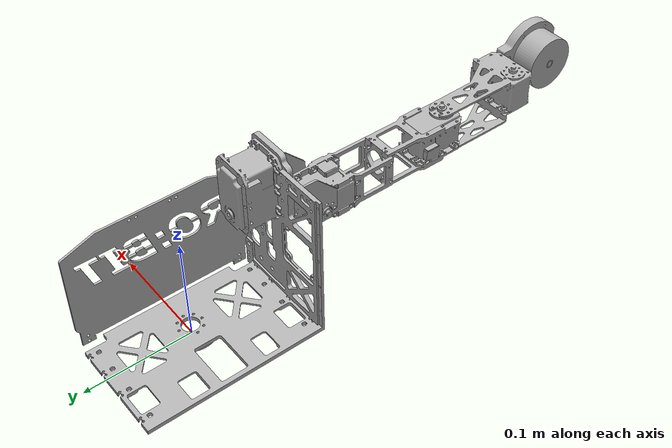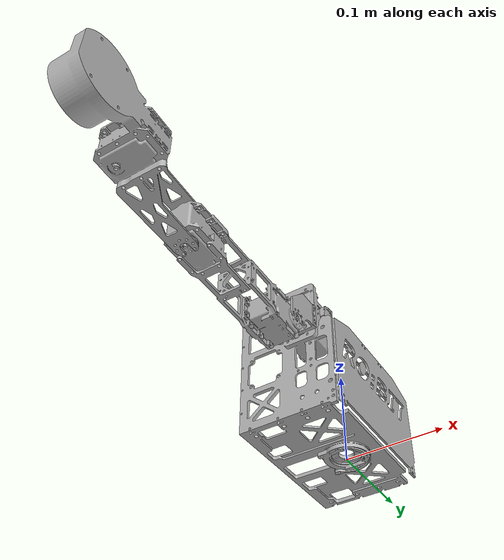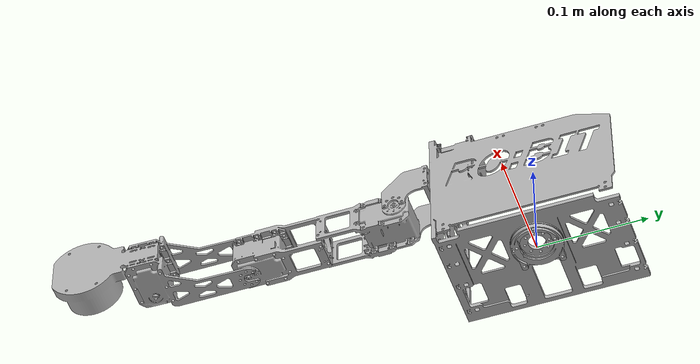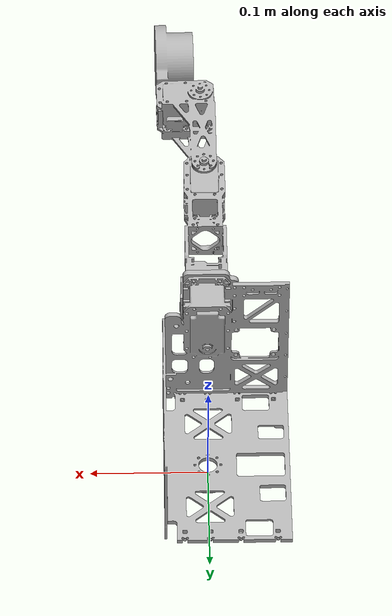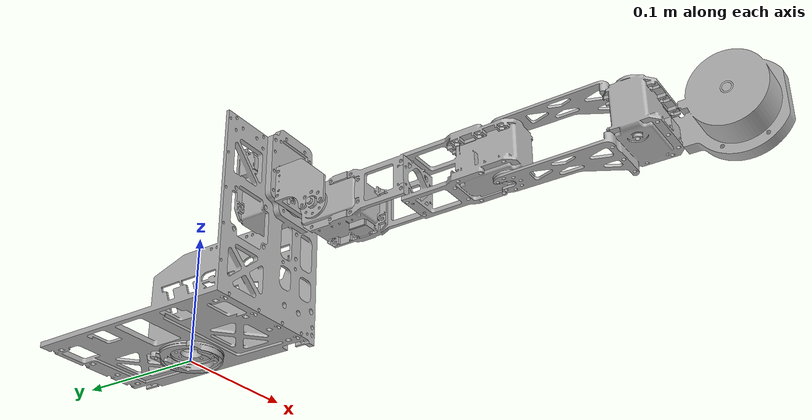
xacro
<?xml version="1.0" ?>
<robot name="torso" xmlns:xacro="http://www.ros.org/wiki/xacro">

<xacro:include filename="$(find torso_description)/urdf/materials.xacro" />
<xacro:include filename="$(find torso_description)/urdf/torso.trans" />
<xacro:include filename="$(find torso_description)/urdf/torso.gazebo" />
<link name="base_link">
  <inertial>
    <origin xyz="0.00011617065581982777 0.0001987147886676531 0.003861680026704299" rpy="0 0 0"/>
    <mass value="0.03383387831439715"/>
    <inertia ixx="7e-06" iyy="7e-06" izz="1.4e-05" ixy="-0.0" iyz="0.0" ixz="0.0"/>
  </inertial>
  <visual>
    <origin xyz="0 0 0" rpy="0 0 0"/>
    <geometry>
      <mesh filename="file://$(find torso_description)/meshes/base_link.stl" scale="0.001 0.001 0.001"/>
    </geometry>
    <material name="silver"/>
  </visual>
  <collision>
    <origin xyz="0 0 0" rpy="0 0 0"/>
    <geometry>
      <mesh filename="file://$(find torso_description)/meshes/base_link.stl" scale="0.001 0.001 0.001"/>
    </geometry>
  </collision>
</link>

<link name="torso_1">
  <inertial>
    <origin xyz="-0.0003615717861448489 -0.04352493787760899 0.07173680905089597" rpy="0 0 0"/>
    <mass value="1.3481459270185834"/>
    <inertia ixx="0.006536" iyy="0.004526" izz="0.004074" ixy="-0.000353" iyz="0.001724" ixz="-0.000148"/>
  </inertial>
  <visual>
    <origin xyz="2.8e-05 -0.000199 -0.006342" rpy="0 0 0"/>
    <geometry>
      <mesh filename="file://$(find torso_description)/meshes/torso_1.stl" scale="0.001 0.001 0.001"/>
    </geometry>
    <material name="silver"/>
  </visual>
  <collision>
    <origin xyz="2.8e-05 -0.000199 -0.006342" rpy="0 0 0"/>
    <geometry>
      <mesh filename="file://$(find torso_description)/meshes/torso_1.stl" scale="0.001 0.001 0.001"/>
    </geometry>
  </collision>
</link>

<link name="shoulder_1">
  <inertial>
    <origin xyz="-0.0008026285020619964 -0.012632938511404956 -0.0025992966371718162" rpy="0 0 0"/>
    <mass value="0.06721028329114163"/>
    <inertia ixx="1.7e-05" iyy="2.8e-05" izz="3.3e-05" ixy="-0.0" iyz="-3e-06" ixz="-0.0"/>
  </inertial>
  <visual>
    <origin xyz="2.8e-05 0.091051 -0.106502" rpy="0 0 0"/>
    <geometry>
      <mesh filename="file://$(find torso_description)/meshes/shoulder_1.stl" scale="0.001 0.001 0.001"/>
    </geometry>
    <material name="silver"/>
  </visual>
  <collision>
    <origin xyz="2.8e-05 0.091051 -0.106502" rpy="0 0 0"/>
    <geometry>
      <mesh filename="file://$(find torso_description)/meshes/shoulder_1.stl" scale="0.001 0.001 0.001"/>
    </geometry>
  </collision>
</link>

<link name="upperarm_1">
  <inertial>
    <origin xyz="0.02053221240763796 -0.07168979199152323 -1.5541428002002755e-05" rpy="0 0 0"/>
    <mass value="0.7964005518324803"/>
    <inertia ixx="0.002858" iyy="0.000163" izz="0.002858" ixy="2e-06" iyz="1e-06" ixz="0.0"/>
  </inertial>
  <visual>
    <origin xyz="0.021501 0.123551 -0.081505" rpy="0 0 0"/>
    <geometry>
      <mesh filename="file://$(find torso_description)/meshes/upperarm_1.stl" scale="0.001 0.001 0.001"/>
    </geometry>
    <material name="silver"/>
  </visual>
  <collision>
    <origin xyz="0.021501 0.123551 -0.081505" rpy="0 0 0"/>
    <geometry>
      <mesh filename="file://$(find torso_description)/meshes/upperarm_1.stl" scale="0.001 0.001 0.001"/>
    </geometry>
  </collision>
</link>

<link name="forearm_1">
  <inertial>
    <origin xyz="0.02095974500156214 -0.11900667913269303 -0.02035210502614901" rpy="0 0 0"/>
    <mass value="1.088969578492718"/>
    <inertia ixx="0.001498" iyy="0.000398" izz="0.001483" ixy="0.000232" iyz="-2e-06" ixz="3e-06"/>
  </inertial>
  <visual>
    <origin xyz="0.000949 0.266753 -0.101993" rpy="0 0 0"/>
    <geometry>
      <mesh filename="file://$(find torso_description)/meshes/forearm_1.stl" scale="0.001 0.001 0.001"/>
    </geometry>
    <material name="silver"/>
  </visual>
  <collision>
    <origin xyz="0.000949 0.266753 -0.101993" rpy="0 0 0"/>
    <geometry>
      <mesh filename="file://$(find torso_description)/meshes/forearm_1.stl" scale="0.001 0.001 0.001"/>
    </geometry>
  </collision>
</link>

<link name="ee_link_1">
  <inertial>
    <origin xyz="-3.20500412433547e-08 2.4594707148661854e-07 0.00011294502366754333" rpy="0 0 0"/>
    <mass value="1.902707681457099e-07"/>
    <inertia ixx="0.0" iyy="0.0" izz="0.0" ixy="0.0" iyz="0.0" ixz="-0.0"/>
  </inertial>
  <visual>
    <origin xyz="-0.006657 0.411441 -0.081569" rpy="0 0 0"/>
    <geometry>
      <mesh filename="file://$(find torso_description)/meshes/ee_link_1.stl" scale="0.001 0.001 0.001"/>
    </geometry>
    <material name="silver"/>
  </visual>
  <collision>
    <origin xyz="-0.006657 0.411441 -0.081569" rpy="0 0 0"/>
    <geometry>
      <mesh filename="file://$(find torso_description)/meshes/ee_link_1.stl" scale="0.001 0.001 0.001"/>
    </geometry>
  </collision>
</link>

<joint name="rotate_22" type="continuous">
  <origin xyz="-2.8e-05 0.000199 0.006342" rpy="0 0 0"/>
  <parent link="base_link"/>
  <child link="torso_1"/>
  <axis xyz="0.0 -0.0 1.0"/>
</joint>

<joint name="rotate_1" type="continuous">
  <origin xyz="0.0 -0.09125 0.10016" rpy="0 0 0"/>
  <parent link="torso_1"/>
  <child link="shoulder_1"/>
  <axis xyz="-0.0 -1.0 -0.0"/>
</joint>

<joint name="rotate_3" type="continuous">
  <origin xyz="-0.021473 -0.0325 -0.024997" rpy="0 0 0"/>
  <parent link="shoulder_1"/>
  <child link="upperarm_1"/>
  <axis xyz="1.0 -0.0 -0.000117"/>
</joint>

<joint name="rotate_5" type="continuous">
  <origin xyz="0.020552 -0.143202 0.020488" rpy="0 0 0"/>
  <parent link="upperarm_1"/>
  <child link="forearm_1"/>
  <axis xyz="0.000117 -6.4e-05 1.0"/>
</joint>

<joint name="rigid_dummy" type="fixed">
  <origin xyz="0.007606 -0.144688 -0.020424" rpy="0 0 0"/>
  <parent link="forearm_1"/>
  <child link="ee_link_1"/>
</joint>

</robot>

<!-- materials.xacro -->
<robot name="torso" xmlns:xacro="http://www.ros.org/wiki/xacro" >

<material name="silver">
  <color rgba="0.700 0.700 0.700 1.000"/>
</material>

</robot>

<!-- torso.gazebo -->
<robot name="torso" xmlns:xacro="http://www.ros.org/wiki/xacro" >

<xacro:property name="body_color" value="Gazebo/Silver" />

<gazebo>
  <plugin name="control" filename="libgazebo_ros_control.so"/>
</gazebo>
<gazebo reference="base_link">
  <material>${body_color}</material>
  <mu1>0.2</mu1>
  <mu2>0.2</mu2>
  <self_collide>true</self_collide>
  <gravity>true</gravity>
</gazebo>

<gazebo reference="torso_1">
  <material>${body_color}</material>
  <mu1>0.2</mu1>
  <mu2>0.2</mu2>
  <self_collide>true</self_collide>
</gazebo>

<gazebo reference="shoulder_1">
  <material>${body_color}</material>
  <mu1>0.2</mu1>
  <mu2>0.2</mu2>
  <self_collide>true</self_collide>
</gazebo>

<gazebo reference="upperarm_1">
  <material>${body_color}</material>
  <mu1>0.2</mu1>
  <mu2>0.2</mu2>
  <self_collide>true</self_collide>
</gazebo>

<gazebo reference="forearm_1">
  <material>${body_color}</material>
  <mu1>0.2</mu1>
  <mu2>0.2</mu2>
  <self_collide>true</self_collide>
</gazebo>

<gazebo reference="ee_link_1">
  <material>${body_color}</material>
  <mu1>0.2</mu1>
  <mu2>0.2</mu2>
  <self_collide>true</self_collide>
</gazebo>

</robot>
